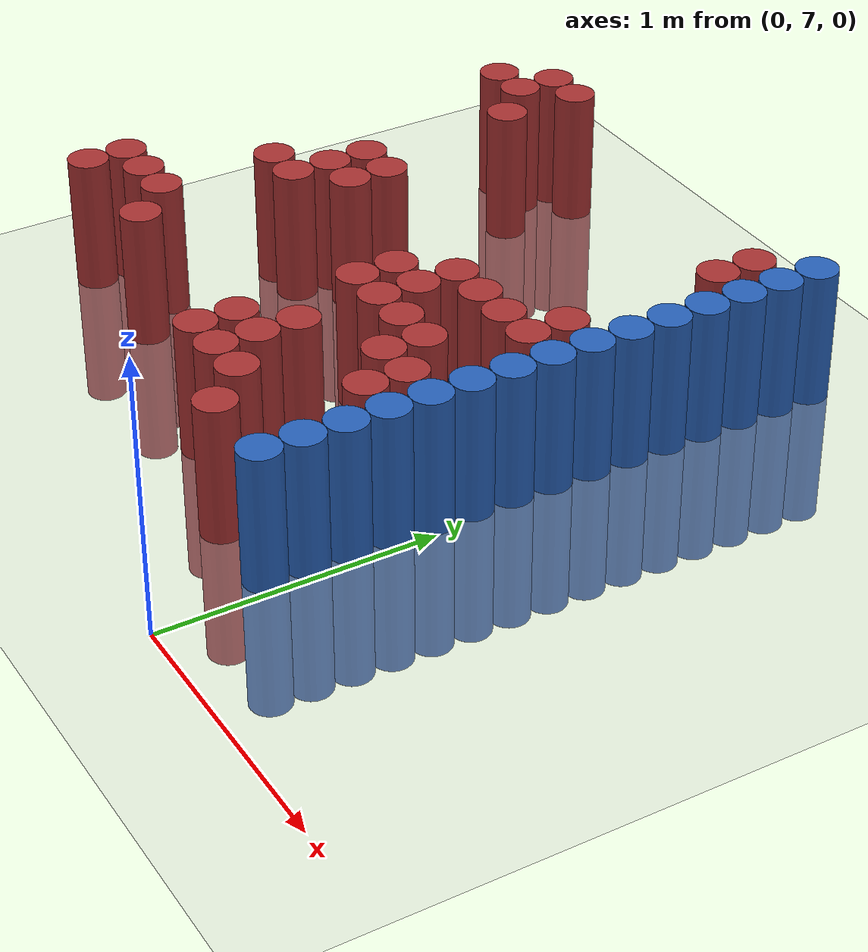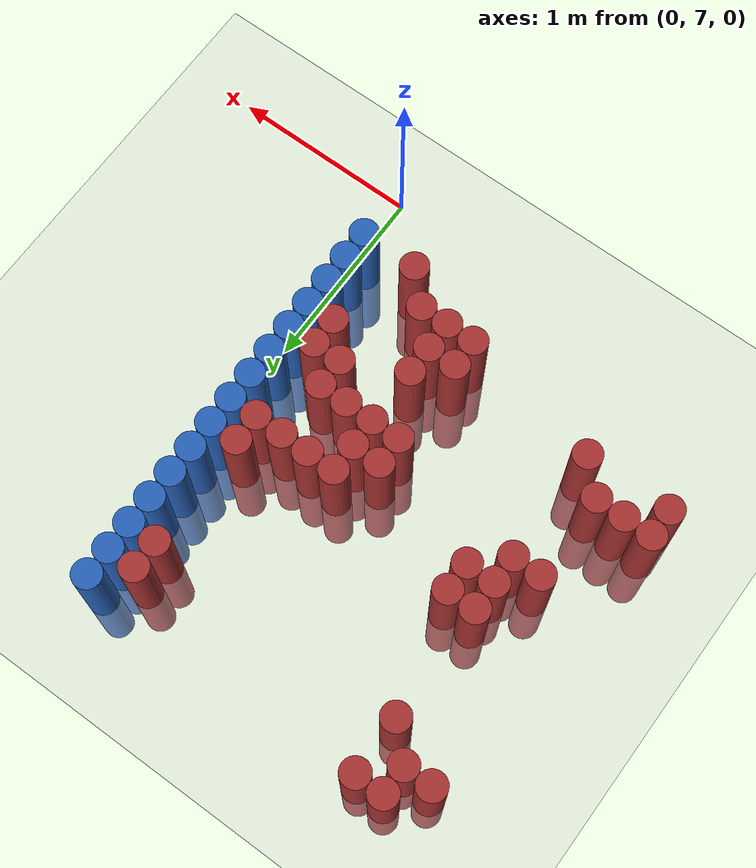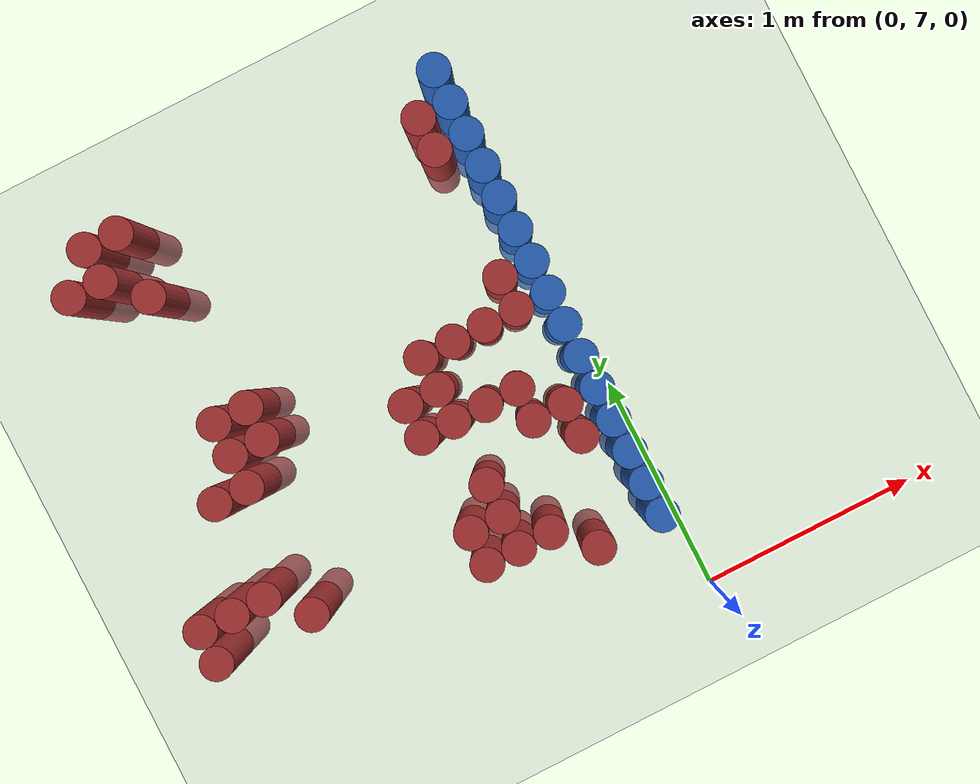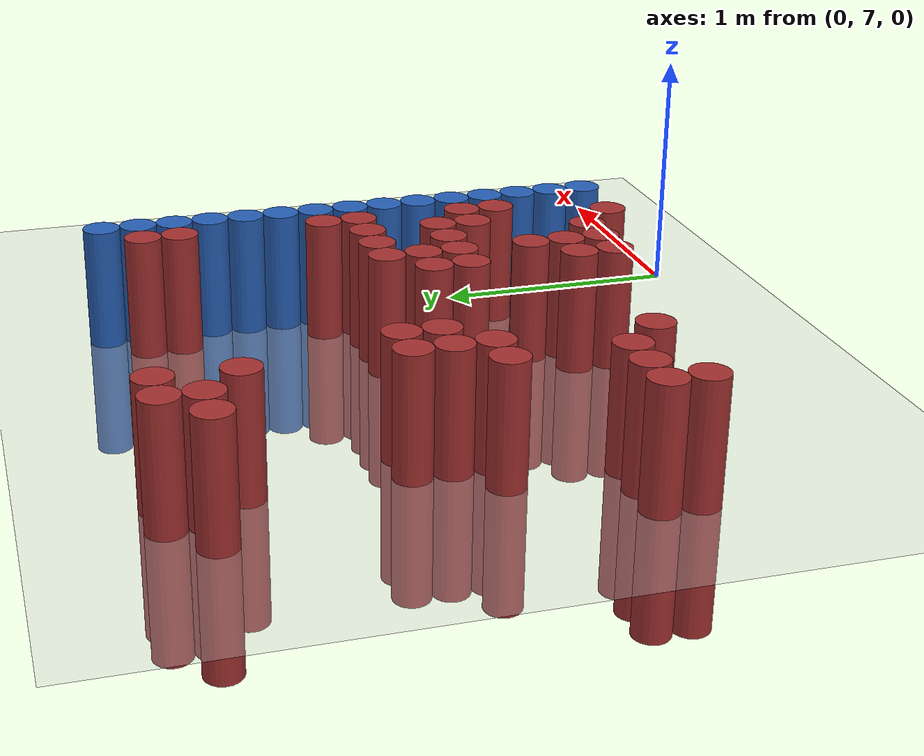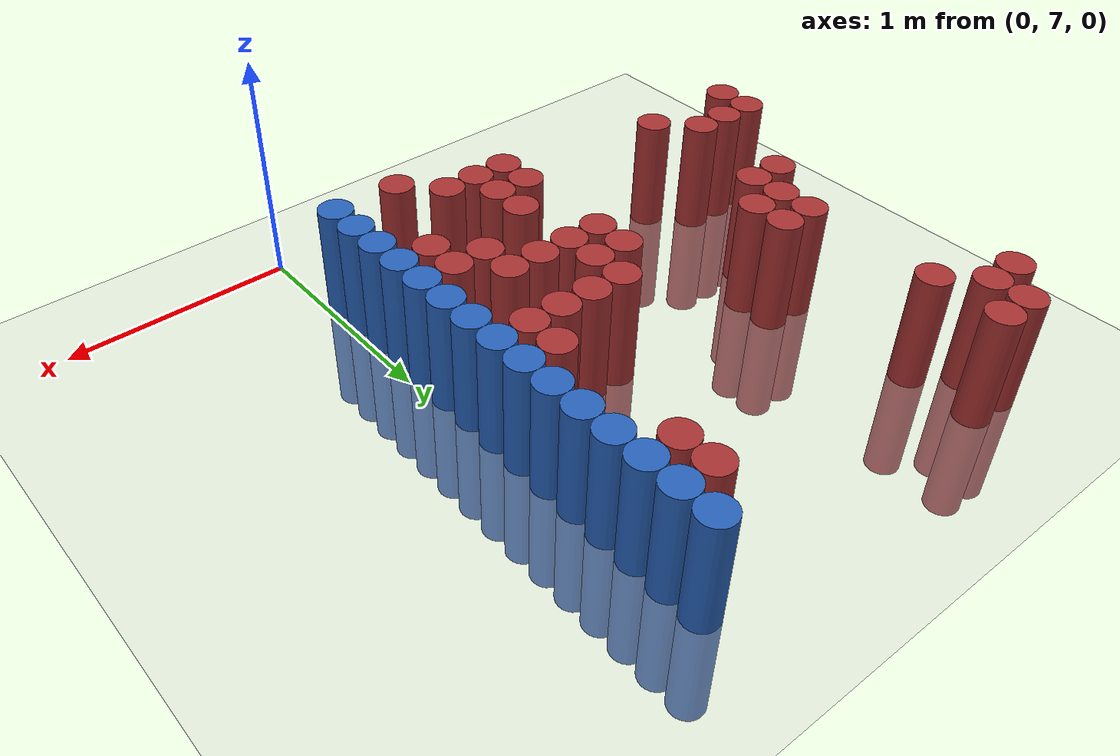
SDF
<sdf version="1.6">
 <world name="default">
  <model name="ground_plane">
   <static>1</static>
   <link name="link">
    <collision name="collision">
     <geometry><plane><normal>0 0 1</normal><size>100 100</size></plane></geometry>
     <surface><friction><ode><mu>100</mu><mu2>50</mu2></ode></friction></surface>
    </collision>
    <visual name="visual">
     <cast_shadows>0</cast_shadows>
     <geometry><plane><normal>0 0 1</normal><size>100 100</size></plane></geometry>
     <material>
      <script><uri>file://media/materials/scripts/gazebo.material</uri><name>Gazebo/Grey</name></script>
     </material>
    </visual>
   </link>
  </model>
  <model name="unit_cylinder_155">
   <static>1</static>
   <pose>-2.025000 7.725000 0.000000 0.000000 0.000000 0.000000</pose>
   <link name="link">
    <inertial>
     <mass>1</mass>
     <inertia><ixx>0.145833</ixx><ixy>0</ixy><ixz>0</ixz><iyy>0.145833</iyy><iyz>0</iyz><izz>0.125</izz></inertia>
    </inertial>
    <collision name="collision">
     <geometry><cylinder><radius>0.075000</radius><length>1</length></cylinder></geometry>
    </collision>
    <visual name="visual">
     <geometry><cylinder><radius>0.075000</radius><length>1</length></cylinder></geometry>
     <material>
      <ambient>0.648000 0.192000 0.192000 1</ambient>
      <diffuse>0.648000 0.192000 0.192000 1</diffuse>
     </material>
     <material>
      <script><name>Gazebo/Grey</name><uri>file://media/materials/scripts/gazebo.material</uri></script>
     </material>
    </visual>
   </link>
  </model>
  <model name="unit_cylinder_156">
   <static>1</static>
   <pose>-2.025000 7.875000 0.000000 0.000000 0.000000 0.000000</pose>
   <link name="link">
    <inertial>
     <mass>1</mass>
     <inertia><ixx>0.145833</ixx><ixy>0</ixy><ixz>0</ixz><iyy>0.145833</iyy><iyz>0</iyz><izz>0.125</izz></inertia>
    </inertial>
    <collision name="collision">
     <geometry><cylinder><radius>0.075000</radius><length>1</length></cylinder></geometry>
    </collision>
    <visual name="visual">
     <geometry><cylinder><radius>0.075000</radius><length>1</length></cylinder></geometry>
     <material>
      <ambient>0.648000 0.192000 0.192000 1</ambient>
      <diffuse>0.648000 0.192000 0.192000 1</diffuse>
     </material>
     <material>
      <script><name>Gazebo/Grey</name><uri>file://media/materials/scripts/gazebo.material</uri></script>
     </material>
    </visual>
   </link>
  </model>
  <model name="unit_cylinder_159">
   <static>1</static>
   <pose>-1.875000 7.875000 0.000000 0.000000 0.000000 0.000000</pose>
   <link name="link">
    <inertial>
     <mass>1</mass>
     <inertia><ixx>0.145833</ixx><ixy>0</ixy><ixz>0</ixz><iyy>0.145833</iyy><iyz>0</iyz><izz>0.125</izz></inertia>
    </inertial>
    <collision name="collision">
     <geometry><cylinder><radius>0.075000</radius><length>1</length></cylinder></geometry>
    </collision>
    <visual name="visual">
     <geometry><cylinder><radius>0.075000</radius><length>1</length></cylinder></geometry>
     <material>
      <ambient>0.648000 0.192000 0.192000 1</ambient>
      <diffuse>0.648000 0.192000 0.192000 1</diffuse>
     </material>
     <material>
      <script><name>Gazebo/Grey</name><uri>file://media/materials/scripts/gazebo.material</uri></script>
     </material>
    </visual>
   </link>
  </model>
  <model name="unit_cylinder_160">
   <static>1</static>
   <pose>-1.875000 9.375000 0.000000 0.000000 0.000000 0.000000</pose>
   <link name="link">
    <inertial>
     <mass>1</mass>
     <inertia><ixx>0.145833</ixx><ixy>0</ixy><ixz>0</ixz><iyy>0.145833</iyy><iyz>0</iyz><izz>0.125</izz></inertia>
    </inertial>
    <collision name="collision">
     <geometry><cylinder><radius>0.075000</radius><length>1</length></cylinder></geometry>
    </collision>
    <visual name="visual">
     <geometry><cylinder><radius>0.075000</radius><length>1</length></cylinder></geometry>
     <material>
      <ambient>0.648000 0.192000 0.192000 1</ambient>
      <diffuse>0.648000 0.192000 0.192000 1</diffuse>
     </material>
     <material>
      <script><name>Gazebo/Grey</name><uri>file://media/materials/scripts/gazebo.material</uri></script>
     </material>
    </visual>
   </link>
  </model>
  <model name="unit_cylinder_161">
   <static>1</static>
   <pose>-1.725000 7.875000 0.000000 0.000000 0.000000 0.000000</pose>
   <link name="link">
    <inertial>
     <mass>1</mass>
     <inertia><ixx>0.145833</ixx><ixy>0</ixy><ixz>0</ixz><iyy>0.145833</iyy><iyz>0</iyz><izz>0.125</izz></inertia>
    </inertial>
    <collision name="collision">
     <geometry><cylinder><radius>0.075000</radius><length>1</length></cylinder></geometry>
    </collision>
    <visual name="visual">
     <geometry><cylinder><radius>0.075000</radius><length>1</length></cylinder></geometry>
     <material>
      <ambient>0.648000 0.192000 0.192000 1</ambient>
      <diffuse>0.648000 0.192000 0.192000 1</diffuse>
     </material>
     <material>
      <script><name>Gazebo/Grey</name><uri>file://media/materials/scripts/gazebo.material</uri></script>
     </material>
    </visual>
   </link>
  </model>
  <model name="unit_cylinder_162">
   <static>1</static>
   <pose>-1.725000 8.325000 0.000000 0.000000 0.000000 0.000000</pose>
   <link name="link">
    <inertial>
     <mass>1</mass>
     <inertia><ixx>0.145833</ixx><ixy>0</ixy><ixz>0</ixz><iyy>0.145833</iyy><iyz>0</iyz><izz>0.125</izz></inertia>
    </inertial>
    <collision name="collision">
     <geometry><cylinder><radius>0.075000</radius><length>1</length></cylinder></geometry>
    </collision>
    <visual name="visual">
     <geometry><cylinder><radius>0.075000</radius><length>1</length></cylinder></geometry>
     <material>
      <ambient>0.648000 0.192000 0.192000 1</ambient>
      <diffuse>0.648000 0.192000 0.192000 1</diffuse>
     </material>
     <material>
      <script><name>Gazebo/Grey</name><uri>file://media/materials/scripts/gazebo.material</uri></script>
     </material>
    </visual>
   </link>
  </model>
  <model name="unit_cylinder_163">
   <static>1</static>
   <pose>-1.725000 9.375000 0.000000 0.000000 0.000000 0.000000</pose>
   <link name="link">
    <inertial>
     <mass>1</mass>
     <inertia><ixx>0.145833</ixx><ixy>0</ixy><ixz>0</ixz><iyy>0.145833</iyy><iyz>0</iyz><izz>0.125</izz></inertia>
    </inertial>
    <collision name="collision">
     <geometry><cylinder><radius>0.075000</radius><length>1</length></cylinder></geometry>
    </collision>
    <visual name="visual">
     <geometry><cylinder><radius>0.075000</radius><length>1</length></cylinder></geometry>
     <material>
      <ambient>0.648000 0.192000 0.192000 1</ambient>
      <diffuse>0.648000 0.192000 0.192000 1</diffuse>
     </material>
     <material>
      <script><name>Gazebo/Grey</name><uri>file://media/materials/scripts/gazebo.material</uri></script>
     </material>
    </visual>
   </link>
  </model>
  <model name="unit_cylinder_164">
   <static>1</static>
   <pose>-1.725000 9.525000 0.000000 0.000000 0.000000 0.000000</pose>
   <link name="link">
    <inertial>
     <mass>1</mass>
     <inertia><ixx>0.145833</ixx><ixy>0</ixy><ixz>0</ixz><iyy>0.145833</iyy><iyz>0</iyz><izz>0.125</izz></inertia>
    </inertial>
    <collision name="collision">
     <geometry><cylinder><radius>0.075000</radius><length>1</length></cylinder></geometry>
    </collision>
    <visual name="visual">
     <geometry><cylinder><radius>0.075000</radius><length>1</length></cylinder></geometry>
     <material>
      <ambient>0.648000 0.192000 0.192000 1</ambient>
      <diffuse>0.648000 0.192000 0.192000 1</diffuse>
     </material>
     <material>
      <script><name>Gazebo/Grey</name><uri>file://media/materials/scripts/gazebo.material</uri></script>
     </material>
    </visual>
   </link>
  </model>
  <model name="unit_cylinder_165">
   <static>1</static>
   <pose>-1.575000 7.725000 0.000000 0.000000 0.000000 0.000000</pose>
   <link name="link">
    <inertial>
     <mass>1</mass>
     <inertia><ixx>0.145833</ixx><ixy>0</ixy><ixz>0</ixz><iyy>0.145833</iyy><iyz>0</iyz><izz>0.125</izz></inertia>
    </inertial>
    <collision name="collision">
     <geometry><cylinder><radius>0.075000</radius><length>1</length></cylinder></geometry>
    </collision>
    <visual name="visual">
     <geometry><cylinder><radius>0.075000</radius><length>1</length></cylinder></geometry>
     <material>
      <ambient>0.648000 0.192000 0.192000 1</ambient>
      <diffuse>0.648000 0.192000 0.192000 1</diffuse>
     </material>
     <material>
      <script><name>Gazebo/Grey</name><uri>file://media/materials/scripts/gazebo.material</uri></script>
     </material>
    </visual>
   </link>
  </model>
  <model name="unit_cylinder_166">
   <static>1</static>
   <pose>-1.575000 8.325000 0.000000 0.000000 0.000000 0.000000</pose>
   <link name="link">
    <inertial>
     <mass>1</mass>
     <inertia><ixx>0.145833</ixx><ixy>0</ixy><ixz>0</ixz><iyy>0.145833</iyy><iyz>0</iyz><izz>0.125</izz></inertia>
    </inertial>
    <collision name="collision">
     <geometry><cylinder><radius>0.075000</radius><length>1</length></cylinder></geometry>
    </collision>
    <visual name="visual">
     <geometry><cylinder><radius>0.075000</radius><length>1</length></cylinder></geometry>
     <material>
      <ambient>0.648000 0.192000 0.192000 1</ambient>
      <diffuse>0.648000 0.192000 0.192000 1</diffuse>
     </material>
     <material>
      <script><name>Gazebo/Grey</name><uri>file://media/materials/scripts/gazebo.material</uri></script>
     </material>
    </visual>
   </link>
  </model>
  <model name="unit_cylinder_167">
   <static>1</static>
   <pose>-1.575000 8.475000 0.000000 0.000000 0.000000 0.000000</pose>
   <link name="link">
    <inertial>
     <mass>1</mass>
     <inertia><ixx>0.145833</ixx><ixy>0</ixy><ixz>0</ixz><iyy>0.145833</iyy><iyz>0</iyz><izz>0.125</izz></inertia>
    </inertial>
    <collision name="collision">
     <geometry><cylinder><radius>0.075000</radius><length>1</length></cylinder></geometry>
    </collision>
    <visual name="visual">
     <geometry><cylinder><radius>0.075000</radius><length>1</length></cylinder></geometry>
     <material>
      <ambient>0.648000 0.192000 0.192000 1</ambient>
      <diffuse>0.648000 0.192000 0.192000 1</diffuse>
     </material>
     <material>
      <script><name>Gazebo/Grey</name><uri>file://media/materials/scripts/gazebo.material</uri></script>
     </material>
    </visual>
   </link>
  </model>
  <model name="unit_cylinder_168">
   <static>1</static>
   <pose>-1.575000 8.625000 0.000000 0.000000 0.000000 0.000000</pose>
   <link name="link">
    <inertial>
     <mass>1</mass>
     <inertia><ixx>0.145833</ixx><ixy>0</ixy><ixz>0</ixz><iyy>0.145833</iyy><iyz>0</iyz><izz>0.125</izz></inertia>
    </inertial>
    <collision name="collision">
     <geometry><cylinder><radius>0.075000</radius><length>1</length></cylinder></geometry>
    </collision>
    <visual name="visual">
     <geometry><cylinder><radius>0.075000</radius><length>1</length></cylinder></geometry>
     <material>
      <ambient>0.648000 0.192000 0.192000 1</ambient>
      <diffuse>0.648000 0.192000 0.192000 1</diffuse>
     </material>
     <material>
      <script><name>Gazebo/Grey</name><uri>file://media/materials/scripts/gazebo.material</uri></script>
     </material>
    </visual>
   </link>
  </model>
  <model name="unit_cylinder_169">
   <static>1</static>
   <pose>-1.575000 9.225000 0.000000 0.000000 0.000000 0.000000</pose>
   <link name="link">
    <inertial>
     <mass>1</mass>
     <inertia><ixx>0.145833</ixx><ixy>0</ixy><ixz>0</ixz><iyy>0.145833</iyy><iyz>0</iyz><izz>0.125</izz></inertia>
    </inertial>
    <collision name="collision">
     <geometry><cylinder><radius>0.075000</radius><length>1</length></cylinder></geometry>
    </collision>
    <visual name="visual">
     <geometry><cylinder><radius>0.075000</radius><length>1</length></cylinder></geometry>
     <material>
      <ambient>0.648000 0.192000 0.192000 1</ambient>
      <diffuse>0.648000 0.192000 0.192000 1</diffuse>
     </material>
     <material>
      <script><name>Gazebo/Grey</name><uri>file://media/materials/scripts/gazebo.material</uri></script>
     </material>
    </visual>
   </link>
  </model>
  <model name="unit_cylinder_170">
   <static>1</static>
   <pose>-1.575000 9.525000 0.000000 0.000000 0.000000 0.000000</pose>
   <link name="link">
    <inertial>
     <mass>1</mass>
     <inertia><ixx>0.145833</ixx><ixy>0</ixy><ixz>0</ixz><iyy>0.145833</iyy><iyz>0</iyz><izz>0.125</izz></inertia>
    </inertial>
    <collision name="collision">
     <geometry><cylinder><radius>0.075000</radius><length>1</length></cylinder></geometry>
    </collision>
    <visual name="visual">
     <geometry><cylinder><radius>0.075000</radius><length>1</length></cylinder></geometry>
     <material>
      <ambient>0.648000 0.192000 0.192000 1</ambient>
      <diffuse>0.648000 0.192000 0.192000 1</diffuse>
     </material>
     <material>
      <script><name>Gazebo/Grey</name><uri>file://media/materials/scripts/gazebo.material</uri></script>
     </material>
    </visual>
   </link>
  </model>
  <model name="unit_cylinder_171">
   <static>1</static>
   <pose>-1.425000 8.475000 0.000000 0.000000 0.000000 0.000000</pose>
   <link name="link">
    <inertial>
     <mass>1</mass>
     <inertia><ixx>0.145833</ixx><ixy>0</ixy><ixz>0</ixz><iyy>0.145833</iyy><iyz>0</iyz><izz>0.125</izz></inertia>
    </inertial>
    <collision name="collision">
     <geometry><cylinder><radius>0.075000</radius><length>1</length></cylinder></geometry>
    </collision>
    <visual name="visual">
     <geometry><cylinder><radius>0.075000</radius><length>1</length></cylinder></geometry>
     <material>
      <ambient>0.648000 0.192000 0.192000 1</ambient>
      <diffuse>0.648000 0.192000 0.192000 1</diffuse>
     </material>
     <material>
      <script><name>Gazebo/Grey</name><uri>file://media/materials/scripts/gazebo.material</uri></script>
     </material>
    </visual>
   </link>
  </model>
  <model name="unit_cylinder_172">
   <static>1</static>
   <pose>-1.425000 8.625000 0.000000 0.000000 0.000000 0.000000</pose>
   <link name="link">
    <inertial>
     <mass>1</mass>
     <inertia><ixx>0.145833</ixx><ixy>0</ixy><ixz>0</ixz><iyy>0.145833</iyy><iyz>0</iyz><izz>0.125</izz></inertia>
    </inertial>
    <collision name="collision">
     <geometry><cylinder><radius>0.075000</radius><length>1</length></cylinder></geometry>
    </collision>
    <visual name="visual">
     <geometry><cylinder><radius>0.075000</radius><length>1</length></cylinder></geometry>
     <material>
      <ambient>0.648000 0.192000 0.192000 1</ambient>
      <diffuse>0.648000 0.192000 0.192000 1</diffuse>
     </material>
     <material>
      <script><name>Gazebo/Grey</name><uri>file://media/materials/scripts/gazebo.material</uri></script>
     </material>
    </visual>
   </link>
  </model>
  <model name="unit_cylinder_193">
   <static>1</static>
   <pose>-0.825000 7.575000 0.000000 0.000000 0.000000 0.000000</pose>
   <link name="link">
    <inertial>
     <mass>1</mass>
     <inertia><ixx>0.145833</ixx><ixy>0</ixy><ixz>0</ixz><iyy>0.145833</iyy><iyz>0</iyz><izz>0.125</izz></inertia>
    </inertial>
    <collision name="collision">
     <geometry><cylinder><radius>0.075000</radius><length>1</length></cylinder></geometry>
    </collision>
    <visual name="visual">
     <geometry><cylinder><radius>0.075000</radius><length>1</length></cylinder></geometry>
     <material>
      <ambient>0.648000 0.192000 0.192000 1</ambient>
      <diffuse>0.648000 0.192000 0.192000 1</diffuse>
     </material>
     <material>
      <script><name>Gazebo/Grey</name><uri>file://media/materials/scripts/gazebo.material</uri></script>
     </material>
    </visual>
   </link>
  </model>
  <model name="unit_cylinder_194">
   <static>1</static>
   <pose>-0.825000 7.725000 0.000000 0.000000 0.000000 0.000000</pose>
   <link name="link">
    <inertial>
     <mass>1</mass>
     <inertia><ixx>0.145833</ixx><ixy>0</ixy><ixz>0</ixz><iyy>0.145833</iyy><iyz>0</iyz><izz>0.125</izz></inertia>
    </inertial>
    <collision name="collision">
     <geometry><cylinder><radius>0.075000</radius><length>1</length></cylinder></geometry>
    </collision>
    <visual name="visual">
     <geometry><cylinder><radius>0.075000</radius><length>1</length></cylinder></geometry>
     <material>
      <ambient>0.648000 0.192000 0.192000 1</ambient>
      <diffuse>0.648000 0.192000 0.192000 1</diffuse>
     </material>
     <material>
      <script><name>Gazebo/Grey</name><uri>file://media/materials/scripts/gazebo.material</uri></script>
     </material>
    </visual>
   </link>
  </model>
  <model name="unit_cylinder_195">
   <static>1</static>
   <pose>-0.825000 8.175000 0.000000 0.000000 0.000000 0.000000</pose>
   <link name="link">
    <inertial>
     <mass>1</mass>
     <inertia><ixx>0.145833</ixx><ixy>0</ixy><ixz>0</ixz><iyy>0.145833</iyy><iyz>0</iyz><izz>0.125</izz></inertia>
    </inertial>
    <collision name="collision">
     <geometry><cylinder><radius>0.075000</radius><length>1</length></cylinder></geometry>
    </collision>
    <visual name="visual">
     <geometry><cylinder><radius>0.075000</radius><length>1</length></cylinder></geometry>
     <material>
      <ambient>0.648000 0.192000 0.192000 1</ambient>
      <diffuse>0.648000 0.192000 0.192000 1</diffuse>
     </material>
     <material>
      <script><name>Gazebo/Grey</name><uri>file://media/materials/scripts/gazebo.material</uri></script>
     </material>
    </visual>
   </link>
  </model>
  <model name="unit_cylinder_196">
   <static>1</static>
   <pose>-0.825000 8.325000 0.000000 0.000000 0.000000 0.000000</pose>
   <link name="link">
    <inertial>
     <mass>1</mass>
     <inertia><ixx>0.145833</ixx><ixy>0</ixy><ixz>0</ixz><iyy>0.145833</iyy><iyz>0</iyz><izz>0.125</izz></inertia>
    </inertial>
    <collision name="collision">
     <geometry><cylinder><radius>0.075000</radius><length>1</length></cylinder></geometry>
    </collision>
    <visual name="visual">
     <geometry><cylinder><radius>0.075000</radius><length>1</length></cylinder></geometry>
     <material>
      <ambient>0.648000 0.192000 0.192000 1</ambient>
      <diffuse>0.648000 0.192000 0.192000 1</diffuse>
     </material>
     <material>
      <script><name>Gazebo/Grey</name><uri>file://media/materials/scripts/gazebo.material</uri></script>
     </material>
    </visual>
   </link>
  </model>
  <model name="unit_cylinder_202">
   <static>1</static>
   <pose>-0.675000 7.575000 0.000000 0.000000 0.000000 0.000000</pose>
   <link name="link">
    <inertial>
     <mass>1</mass>
     <inertia><ixx>0.145833</ixx><ixy>0</ixy><ixz>0</ixz><iyy>0.145833</iyy><iyz>0</iyz><izz>0.125</izz></inertia>
    </inertial>
    <collision name="collision">
     <geometry><cylinder><radius>0.075000</radius><length>1</length></cylinder></geometry>
    </collision>
    <visual name="visual">
     <geometry><cylinder><radius>0.075000</radius><length>1</length></cylinder></geometry>
     <material>
      <ambient>0.648000 0.192000 0.192000 1</ambient>
      <diffuse>0.648000 0.192000 0.192000 1</diffuse>
     </material>
     <material>
      <script><name>Gazebo/Grey</name><uri>file://media/materials/scripts/gazebo.material</uri></script>
     </material>
    </visual>
   </link>
  </model>
  <model name="unit_cylinder_203">
   <static>1</static>
   <pose>-0.675000 7.725000 0.000000 0.000000 0.000000 0.000000</pose>
   <link name="link">
    <inertial>
     <mass>1</mass>
     <inertia><ixx>0.145833</ixx><ixy>0</ixy><ixz>0</ixz><iyy>0.145833</iyy><iyz>0</iyz><izz>0.125</izz></inertia>
    </inertial>
    <collision name="collision">
     <geometry><cylinder><radius>0.075000</radius><length>1</length></cylinder></geometry>
    </collision>
    <visual name="visual">
     <geometry><cylinder><radius>0.075000</radius><length>1</length></cylinder></geometry>
     <material>
      <ambient>0.648000 0.192000 0.192000 1</ambient>
      <diffuse>0.648000 0.192000 0.192000 1</diffuse>
     </material>
     <material>
      <script><name>Gazebo/Grey</name><uri>file://media/materials/scripts/gazebo.material</uri></script>
     </material>
    </visual>
   </link>
  </model>
  <model name="unit_cylinder_204">
   <static>1</static>
   <pose>-0.675000 7.875000 0.000000 0.000000 0.000000 0.000000</pose>
   <link name="link">
    <inertial>
     <mass>1</mass>
     <inertia><ixx>0.145833</ixx><ixy>0</ixy><ixz>0</ixz><iyy>0.145833</iyy><iyz>0</iyz><izz>0.125</izz></inertia>
    </inertial>
    <collision name="collision">
     <geometry><cylinder><radius>0.075000</radius><length>1</length></cylinder></geometry>
    </collision>
    <visual name="visual">
     <geometry><cylinder><radius>0.075000</radius><length>1</length></cylinder></geometry>
     <material>
      <ambient>0.648000 0.192000 0.192000 1</ambient>
      <diffuse>0.648000 0.192000 0.192000 1</diffuse>
     </material>
     <material>
      <script><name>Gazebo/Grey</name><uri>file://media/materials/scripts/gazebo.material</uri></script>
     </material>
    </visual>
   </link>
  </model>
  <model name="unit_cylinder_205">
   <static>1</static>
   <pose>-0.675000 8.175000 0.000000 0.000000 0.000000 0.000000</pose>
   <link name="link">
    <inertial>
     <mass>1</mass>
     <inertia><ixx>0.145833</ixx><ixy>0</ixy><ixz>0</ixz><iyy>0.145833</iyy><iyz>0</iyz><izz>0.125</izz></inertia>
    </inertial>
    <collision name="collision">
     <geometry><cylinder><radius>0.075000</radius><length>1</length></cylinder></geometry>
    </collision>
    <visual name="visual">
     <geometry><cylinder><radius>0.075000</radius><length>1</length></cylinder></geometry>
     <material>
      <ambient>0.648000 0.192000 0.192000 1</ambient>
      <diffuse>0.648000 0.192000 0.192000 1</diffuse>
     </material>
     <material>
      <script><name>Gazebo/Grey</name><uri>file://media/materials/scripts/gazebo.material</uri></script>
     </material>
    </visual>
   </link>
  </model>
  <model name="unit_cylinder_206">
   <static>1</static>
   <pose>-0.675000 8.325000 0.000000 0.000000 0.000000 0.000000</pose>
   <link name="link">
    <inertial>
     <mass>1</mass>
     <inertia><ixx>0.145833</ixx><ixy>0</ixy><ixz>0</ixz><iyy>0.145833</iyy><iyz>0</iyz><izz>0.125</izz></inertia>
    </inertial>
    <collision name="collision">
     <geometry><cylinder><radius>0.075000</radius><length>1</length></cylinder></geometry>
    </collision>
    <visual name="visual">
     <geometry><cylinder><radius>0.075000</radius><length>1</length></cylinder></geometry>
     <material>
      <ambient>0.648000 0.192000 0.192000 1</ambient>
      <diffuse>0.648000 0.192000 0.192000 1</diffuse>
     </material>
     <material>
      <script><name>Gazebo/Grey</name><uri>file://media/materials/scripts/gazebo.material</uri></script>
     </material>
    </visual>
   </link>
  </model>
  <model name="unit_cylinder_207">
   <static>1</static>
   <pose>-0.675000 8.475000 0.000000 0.000000 0.000000 0.000000</pose>
   <link name="link">
    <inertial>
     <mass>1</mass>
     <inertia><ixx>0.145833</ixx><ixy>0</ixy><ixz>0</ixz><iyy>0.145833</iyy><iyz>0</iyz><izz>0.125</izz></inertia>
    </inertial>
    <collision name="collision">
     <geometry><cylinder><radius>0.075000</radius><length>1</length></cylinder></geometry>
    </collision>
    <visual name="visual">
     <geometry><cylinder><radius>0.075000</radius><length>1</length></cylinder></geometry>
     <material>
      <ambient>0.648000 0.192000 0.192000 1</ambient>
      <diffuse>0.648000 0.192000 0.192000 1</diffuse>
     </material>
     <material>
      <script><name>Gazebo/Grey</name><uri>file://media/materials/scripts/gazebo.material</uri></script>
     </material>
    </visual>
   </link>
  </model>
  <model name="unit_cylinder_211">
   <static>1</static>
   <pose>-0.525000 7.575000 0.000000 0.000000 0.000000 0.000000</pose>
   <link name="link">
    <inertial>
     <mass>1</mass>
     <inertia><ixx>0.145833</ixx><ixy>0</ixy><ixz>0</ixz><iyy>0.145833</iyy><iyz>0</iyz><izz>0.125</izz></inertia>
    </inertial>
    <collision name="collision">
     <geometry><cylinder><radius>0.075000</radius><length>1</length></cylinder></geometry>
    </collision>
    <visual name="visual">
     <geometry><cylinder><radius>0.075000</radius><length>1</length></cylinder></geometry>
     <material>
      <ambient>0.648000 0.192000 0.192000 1</ambient>
      <diffuse>0.648000 0.192000 0.192000 1</diffuse>
     </material>
     <material>
      <script><name>Gazebo/Grey</name><uri>file://media/materials/scripts/gazebo.material</uri></script>
     </material>
    </visual>
   </link>
  </model>
  <model name="unit_cylinder_212">
   <static>1</static>
   <pose>-0.525000 8.175000 0.000000 0.000000 0.000000 0.000000</pose>
   <link name="link">
    <inertial>
     <mass>1</mass>
     <inertia><ixx>0.145833</ixx><ixy>0</ixy><ixz>0</ixz><iyy>0.145833</iyy><iyz>0</iyz><izz>0.125</izz></inertia>
    </inertial>
    <collision name="collision">
     <geometry><cylinder><radius>0.075000</radius><length>1</length></cylinder></geometry>
    </collision>
    <visual name="visual">
     <geometry><cylinder><radius>0.075000</radius><length>1</length></cylinder></geometry>
     <material>
      <ambient>0.648000 0.192000 0.192000 1</ambient>
      <diffuse>0.648000 0.192000 0.192000 1</diffuse>
     </material>
     <material>
      <script><name>Gazebo/Grey</name><uri>file://media/materials/scripts/gazebo.material</uri></script>
     </material>
    </visual>
   </link>
  </model>
  <model name="unit_cylinder_213">
   <static>1</static>
   <pose>-0.525000 8.475000 0.000000 0.000000 0.000000 0.000000</pose>
   <link name="link">
    <inertial>
     <mass>1</mass>
     <inertia><ixx>0.145833</ixx><ixy>0</ixy><ixz>0</ixz><iyy>0.145833</iyy><iyz>0</iyz><izz>0.125</izz></inertia>
    </inertial>
    <collision name="collision">
     <geometry><cylinder><radius>0.075000</radius><length>1</length></cylinder></geometry>
    </collision>
    <visual name="visual">
     <geometry><cylinder><radius>0.075000</radius><length>1</length></cylinder></geometry>
     <material>
      <ambient>0.648000 0.192000 0.192000 1</ambient>
      <diffuse>0.648000 0.192000 0.192000 1</diffuse>
     </material>
     <material>
      <script><name>Gazebo/Grey</name><uri>file://media/materials/scripts/gazebo.material</uri></script>
     </material>
    </visual>
   </link>
  </model>
  <model name="unit_cylinder_217">
   <static>1</static>
   <pose>-0.375000 7.425000 0.000000 0.000000 0.000000 0.000000</pose>
   <link name="link">
    <inertial>
     <mass>1</mass>
     <inertia><ixx>0.145833</ixx><ixy>0</ixy><ixz>0</ixz><iyy>0.145833</iyy><iyz>0</iyz><izz>0.125</izz></inertia>
    </inertial>
    <collision name="collision">
     <geometry><cylinder><radius>0.075000</radius><length>1</length></cylinder></geometry>
    </collision>
    <visual name="visual">
     <geometry><cylinder><radius>0.075000</radius><length>1</length></cylinder></geometry>
     <material>
      <ambient>0.648000 0.192000 0.192000 1</ambient>
      <diffuse>0.648000 0.192000 0.192000 1</diffuse>
     </material>
     <material>
      <script><name>Gazebo/Grey</name><uri>file://media/materials/scripts/gazebo.material</uri></script>
     </material>
    </visual>
   </link>
  </model>
  <model name="unit_cylinder_218">
   <static>1</static>
   <pose>-0.375000 8.025000 0.000000 0.000000 0.000000 0.000000</pose>
   <link name="link">
    <inertial>
     <mass>1</mass>
     <inertia><ixx>0.145833</ixx><ixy>0</ixy><ixz>0</ixz><iyy>0.145833</iyy><iyz>0</iyz><izz>0.125</izz></inertia>
    </inertial>
    <collision name="collision">
     <geometry><cylinder><radius>0.075000</radius><length>1</length></cylinder></geometry>
    </collision>
    <visual name="visual">
     <geometry><cylinder><radius>0.075000</radius><length>1</length></cylinder></geometry>
     <material>
      <ambient>0.648000 0.192000 0.192000 1</ambient>
      <diffuse>0.648000 0.192000 0.192000 1</diffuse>
     </material>
     <material>
      <script><name>Gazebo/Grey</name><uri>file://media/materials/scripts/gazebo.material</uri></script>
     </material>
    </visual>
   </link>
  </model>
  <model name="unit_cylinder_219">
   <static>1</static>
   <pose>-0.375000 8.175000 0.000000 0.000000 0.000000 0.000000</pose>
   <link name="link">
    <inertial>
     <mass>1</mass>
     <inertia><ixx>0.145833</ixx><ixy>0</ixy><ixz>0</ixz><iyy>0.145833</iyy><iyz>0</iyz><izz>0.125</izz></inertia>
    </inertial>
    <collision name="collision">
     <geometry><cylinder><radius>0.075000</radius><length>1</length></cylinder></geometry>
    </collision>
    <visual name="visual">
     <geometry><cylinder><radius>0.075000</radius><length>1</length></cylinder></geometry>
     <material>
      <ambient>0.648000 0.192000 0.192000 1</ambient>
      <diffuse>0.648000 0.192000 0.192000 1</diffuse>
     </material>
     <material>
      <script><name>Gazebo/Grey</name><uri>file://media/materials/scripts/gazebo.material</uri></script>
     </material>
    </visual>
   </link>
  </model>
  <model name="unit_cylinder_220">
   <static>1</static>
   <pose>-0.375000 8.475000 0.000000 0.000000 0.000000 0.000000</pose>
   <link name="link">
    <inertial>
     <mass>1</mass>
     <inertia><ixx>0.145833</ixx><ixy>0</ixy><ixz>0</ixz><iyy>0.145833</iyy><iyz>0</iyz><izz>0.125</izz></inertia>
    </inertial>
    <collision name="collision">
     <geometry><cylinder><radius>0.075000</radius><length>1</length></cylinder></geometry>
    </collision>
    <visual name="visual">
     <geometry><cylinder><radius>0.075000</radius><length>1</length></cylinder></geometry>
     <material>
      <ambient>0.648000 0.192000 0.192000 1</ambient>
      <diffuse>0.648000 0.192000 0.192000 1</diffuse>
     </material>
     <material>
      <script><name>Gazebo/Grey</name><uri>file://media/materials/scripts/gazebo.material</uri></script>
     </material>
    </visual>
   </link>
  </model>
  <model name="unit_cylinder_232">
   <static>1</static>
   <pose>-0.225000 7.875000 0.000000 0.000000 0.000000 0.000000</pose>
   <link name="link">
    <inertial>
     <mass>1</mass>
     <inertia><ixx>0.145833</ixx><ixy>0</ixy><ixz>0</ixz><iyy>0.145833</iyy><iyz>0</iyz><izz>0.125</izz></inertia>
    </inertial>
    <collision name="collision">
     <geometry><cylinder><radius>0.075000</radius><length>1</length></cylinder></geometry>
    </collision>
    <visual name="visual">
     <geometry><cylinder><radius>0.075000</radius><length>1</length></cylinder></geometry>
     <material>
      <ambient>0.648000 0.192000 0.192000 1</ambient>
      <diffuse>0.648000 0.192000 0.192000 1</diffuse>
     </material>
     <material>
      <script><name>Gazebo/Grey</name><uri>file://media/materials/scripts/gazebo.material</uri></script>
     </material>
    </visual>
   </link>
  </model>
  <model name="unit_cylinder_233">
   <static>1</static>
   <pose>-0.225000 8.025000 0.000000 0.000000 0.000000 0.000000</pose>
   <link name="link">
    <inertial>
     <mass>1</mass>
     <inertia><ixx>0.145833</ixx><ixy>0</ixy><ixz>0</ixz><iyy>0.145833</iyy><iyz>0</iyz><izz>0.125</izz></inertia>
    </inertial>
    <collision name="collision">
     <geometry><cylinder><radius>0.075000</radius><length>1</length></cylinder></geometry>
    </collision>
    <visual name="visual">
     <geometry><cylinder><radius>0.075000</radius><length>1</length></cylinder></geometry>
     <material>
      <ambient>0.648000 0.192000 0.192000 1</ambient>
      <diffuse>0.648000 0.192000 0.192000 1</diffuse>
     </material>
     <material>
      <script><name>Gazebo/Grey</name><uri>file://media/materials/scripts/gazebo.material</uri></script>
     </material>
    </visual>
   </link>
  </model>
  <model name="unit_cylinder_234">
   <static>1</static>
   <pose>-0.225000 8.475000 0.000000 0.000000 0.000000 0.000000</pose>
   <link name="link">
    <inertial>
     <mass>1</mass>
     <inertia><ixx>0.145833</ixx><ixy>0</ixy><ixz>0</ixz><iyy>0.145833</iyy><iyz>0</iyz><izz>0.125</izz></inertia>
    </inertial>
    <collision name="collision">
     <geometry><cylinder><radius>0.075000</radius><length>1</length></cylinder></geometry>
    </collision>
    <visual name="visual">
     <geometry><cylinder><radius>0.075000</radius><length>1</length></cylinder></geometry>
     <material>
      <ambient>0.648000 0.192000 0.192000 1</ambient>
      <diffuse>0.648000 0.192000 0.192000 1</diffuse>
     </material>
     <material>
      <script><name>Gazebo/Grey</name><uri>file://media/materials/scripts/gazebo.material</uri></script>
     </material>
    </visual>
   </link>
  </model>
  <model name="unit_cylinder_235">
   <static>1</static>
   <pose>-0.225000 8.625000 0.000000 0.000000 0.000000 0.000000</pose>
   <link name="link">
    <inertial>
     <mass>1</mass>
     <inertia><ixx>0.145833</ixx><ixy>0</ixy><ixz>0</ixz><iyy>0.145833</iyy><iyz>0</iyz><izz>0.125</izz></inertia>
    </inertial>
    <collision name="collision">
     <geometry><cylinder><radius>0.075000</radius><length>1</length></cylinder></geometry>
    </collision>
    <visual name="visual">
     <geometry><cylinder><radius>0.075000</radius><length>1</length></cylinder></geometry>
     <material>
      <ambient>0.648000 0.192000 0.192000 1</ambient>
      <diffuse>0.648000 0.192000 0.192000 1</diffuse>
     </material>
     <material>
      <script><name>Gazebo/Grey</name><uri>file://media/materials/scripts/gazebo.material</uri></script>
     </material>
    </visual>
   </link>
  </model>
  <model name="unit_cylinder_236">
   <static>1</static>
   <pose>-0.225000 9.225000 0.000000 0.000000 0.000000 0.000000</pose>
   <link name="link">
    <inertial>
     <mass>1</mass>
     <inertia><ixx>0.145833</ixx><ixy>0</ixy><ixz>0</ixz><iyy>0.145833</iyy><iyz>0</iyz><izz>0.125</izz></inertia>
    </inertial>
    <collision name="collision">
     <geometry><cylinder><radius>0.075000</radius><length>1</length></cylinder></geometry>
    </collision>
    <visual name="visual">
     <geometry><cylinder><radius>0.075000</radius><length>1</length></cylinder></geometry>
     <material>
      <ambient>0.648000 0.192000 0.192000 1</ambient>
      <diffuse>0.648000 0.192000 0.192000 1</diffuse>
     </material>
     <material>
      <script><name>Gazebo/Grey</name><uri>file://media/materials/scripts/gazebo.material</uri></script>
     </material>
    </visual>
   </link>
  </model>
  <model name="unit_cylinder_237">
   <static>1</static>
   <pose>-0.225000 9.375000 0.000000 0.000000 0.000000 0.000000</pose>
   <link name="link">
    <inertial>
     <mass>1</mass>
     <inertia><ixx>0.145833</ixx><ixy>0</ixy><ixz>0</ixz><iyy>0.145833</iyy><iyz>0</iyz><izz>0.125</izz></inertia>
    </inertial>
    <collision name="collision">
     <geometry><cylinder><radius>0.075000</radius><length>1</length></cylinder></geometry>
    </collision>
    <visual name="visual">
     <geometry><cylinder><radius>0.075000</radius><length>1</length></cylinder></geometry>
     <material>
      <ambient>0.648000 0.192000 0.192000 1</ambient>
      <diffuse>0.648000 0.192000 0.192000 1</diffuse>
     </material>
     <material>
      <script><name>Gazebo/Grey</name><uri>file://media/materials/scripts/gazebo.material</uri></script>
     </material>
    </visual>
   </link>
  </model>
  <model name="unit_cylinder_253">
   <static>1</static>
   <pose>-0.075000 7.425000 0.000000 0.000000 0.000000 0.000000</pose>
   <link name="link">
    <inertial>
     <mass>1</mass>
     <inertia><ixx>0.145833</ixx><ixy>0</ixy><ixz>0</ixz><iyy>0.145833</iyy><iyz>0</iyz><izz>0.125</izz></inertia>
    </inertial>
    <collision name="collision">
     <geometry><cylinder><radius>0.075000</radius><length>1</length></cylinder></geometry>
    </collision>
    <visual name="visual">
     <geometry><cylinder><radius>0.075000</radius><length>1</length></cylinder></geometry>
     <material>
      <ambient>0.152000 0.379000 0.720000 1</ambient>
      <diffuse>0.152000 0.379000 0.720000 1</diffuse>
     </material>
     <material>
      <script><name>Gazebo/Grey</name><uri>file://media/materials/scripts/gazebo.material</uri></script>
     </material>
    </visual>
   </link>
  </model>
  <model name="unit_cylinder_254">
   <static>1</static>
   <pose>-0.075000 7.575000 0.000000 0.000000 0.000000 0.000000</pose>
   <link name="link">
    <inertial>
     <mass>1</mass>
     <inertia><ixx>0.145833</ixx><ixy>0</ixy><ixz>0</ixz><iyy>0.145833</iyy><iyz>0</iyz><izz>0.125</izz></inertia>
    </inertial>
    <collision name="collision">
     <geometry><cylinder><radius>0.075000</radius><length>1</length></cylinder></geometry>
    </collision>
    <visual name="visual">
     <geometry><cylinder><radius>0.075000</radius><length>1</length></cylinder></geometry>
     <material>
      <ambient>0.152000 0.379000 0.720000 1</ambient>
      <diffuse>0.152000 0.379000 0.720000 1</diffuse>
     </material>
     <material>
      <script><name>Gazebo/Grey</name><uri>file://media/materials/scripts/gazebo.material</uri></script>
     </material>
    </visual>
   </link>
  </model>
  <model name="unit_cylinder_255">
   <static>1</static>
   <pose>-0.075000 7.725000 0.000000 0.000000 0.000000 0.000000</pose>
   <link name="link">
    <inertial>
     <mass>1</mass>
     <inertia><ixx>0.145833</ixx><ixy>0</ixy><ixz>0</ixz><iyy>0.145833</iyy><iyz>0</iyz><izz>0.125</izz></inertia>
    </inertial>
    <collision name="collision">
     <geometry><cylinder><radius>0.075000</radius><length>1</length></cylinder></geometry>
    </collision>
    <visual name="visual">
     <geometry><cylinder><radius>0.075000</radius><length>1</length></cylinder></geometry>
     <material>
      <ambient>0.152000 0.379000 0.720000 1</ambient>
      <diffuse>0.152000 0.379000 0.720000 1</diffuse>
     </material>
     <material>
      <script><name>Gazebo/Grey</name><uri>file://media/materials/scripts/gazebo.material</uri></script>
     </material>
    </visual>
   </link>
  </model>
  <model name="unit_cylinder_256">
   <static>1</static>
   <pose>-0.075000 7.875000 0.000000 0.000000 0.000000 0.000000</pose>
   <link name="link">
    <inertial>
     <mass>1</mass>
     <inertia><ixx>0.145833</ixx><ixy>0</ixy><ixz>0</ixz><iyy>0.145833</iyy><iyz>0</iyz><izz>0.125</izz></inertia>
    </inertial>
    <collision name="collision">
     <geometry><cylinder><radius>0.075000</radius><length>1</length></cylinder></geometry>
    </collision>
    <visual name="visual">
     <geometry><cylinder><radius>0.075000</radius><length>1</length></cylinder></geometry>
     <material>
      <ambient>0.152000 0.379000 0.720000 1</ambient>
      <diffuse>0.152000 0.379000 0.720000 1</diffuse>
     </material>
     <material>
      <script><name>Gazebo/Grey</name><uri>file://media/materials/scripts/gazebo.material</uri></script>
     </material>
    </visual>
   </link>
  </model>
  <model name="unit_cylinder_257">
   <static>1</static>
   <pose>-0.075000 8.025000 0.000000 0.000000 0.000000 0.000000</pose>
   <link name="link">
    <inertial>
     <mass>1</mass>
     <inertia><ixx>0.145833</ixx><ixy>0</ixy><ixz>0</ixz><iyy>0.145833</iyy><iyz>0</iyz><izz>0.125</izz></inertia>
    </inertial>
    <collision name="collision">
     <geometry><cylinder><radius>0.075000</radius><length>1</length></cylinder></geometry>
    </collision>
    <visual name="visual">
     <geometry><cylinder><radius>0.075000</radius><length>1</length></cylinder></geometry>
     <material>
      <ambient>0.152000 0.379000 0.720000 1</ambient>
      <diffuse>0.152000 0.379000 0.720000 1</diffuse>
     </material>
     <material>
      <script><name>Gazebo/Grey</name><uri>file://media/materials/scripts/gazebo.material</uri></script>
     </material>
    </visual>
   </link>
  </model>
  <model name="unit_cylinder_258">
   <static>1</static>
   <pose>-0.075000 8.175000 0.000000 0.000000 0.000000 0.000000</pose>
   <link name="link">
    <inertial>
     <mass>1</mass>
     <inertia><ixx>0.145833</ixx><ixy>0</ixy><ixz>0</ixz><iyy>0.145833</iyy><iyz>0</iyz><izz>0.125</izz></inertia>
    </inertial>
    <collision name="collision">
     <geometry><cylinder><radius>0.075000</radius><length>1</length></cylinder></geometry>
    </collision>
    <visual name="visual">
     <geometry><cylinder><radius>0.075000</radius><length>1</length></cylinder></geometry>
     <material>
      <ambient>0.152000 0.379000 0.720000 1</ambient>
      <diffuse>0.152000 0.379000 0.720000 1</diffuse>
     </material>
     <material>
      <script><name>Gazebo/Grey</name><uri>file://media/materials/scripts/gazebo.material</uri></script>
     </material>
    </visual>
   </link>
  </model>
  <model name="unit_cylinder_259">
   <static>1</static>
   <pose>-0.075000 8.325000 0.000000 0.000000 0.000000 0.000000</pose>
   <link name="link">
    <inertial>
     <mass>1</mass>
     <inertia><ixx>0.145833</ixx><ixy>0</ixy><ixz>0</ixz><iyy>0.145833</iyy><iyz>0</iyz><izz>0.125</izz></inertia>
    </inertial>
    <collision name="collision">
     <geometry><cylinder><radius>0.075000</radius><length>1</length></cylinder></geometry>
    </collision>
    <visual name="visual">
     <geometry><cylinder><radius>0.075000</radius><length>1</length></cylinder></geometry>
     <material>
      <ambient>0.152000 0.379000 0.720000 1</ambient>
      <diffuse>0.152000 0.379000 0.720000 1</diffuse>
     </material>
     <material>
      <script><name>Gazebo/Grey</name><uri>file://media/materials/scripts/gazebo.material</uri></script>
     </material>
    </visual>
   </link>
  </model>
  <model name="unit_cylinder_260">
   <static>1</static>
   <pose>-0.075000 8.475000 0.000000 0.000000 0.000000 0.000000</pose>
   <link name="link">
    <inertial>
     <mass>1</mass>
     <inertia><ixx>0.145833</ixx><ixy>0</ixy><ixz>0</ixz><iyy>0.145833</iyy><iyz>0</iyz><izz>0.125</izz></inertia>
    </inertial>
    <collision name="collision">
     <geometry><cylinder><radius>0.075000</radius><length>1</length></cylinder></geometry>
    </collision>
    <visual name="visual">
     <geometry><cylinder><radius>0.075000</radius><length>1</length></cylinder></geometry>
     <material>
      <ambient>0.152000 0.379000 0.720000 1</ambient>
      <diffuse>0.152000 0.379000 0.720000 1</diffuse>
     </material>
     <material>
      <script><name>Gazebo/Grey</name><uri>file://media/materials/scripts/gazebo.material</uri></script>
     </material>
    </visual>
   </link>
  </model>
  <model name="unit_cylinder_261">
   <static>1</static>
   <pose>-0.075000 8.625000 0.000000 0.000000 0.000000 0.000000</pose>
   <link name="link">
    <inertial>
     <mass>1</mass>
     <inertia><ixx>0.145833</ixx><ixy>0</ixy><ixz>0</ixz><iyy>0.145833</iyy><iyz>0</iyz><izz>0.125</izz></inertia>
    </inertial>
    <collision name="collision">
     <geometry><cylinder><radius>0.075000</radius><length>1</length></cylinder></geometry>
    </collision>
    <visual name="visual">
     <geometry><cylinder><radius>0.075000</radius><length>1</length></cylinder></geometry>
     <material>
      <ambient>0.152000 0.379000 0.720000 1</ambient>
      <diffuse>0.152000 0.379000 0.720000 1</diffuse>
     </material>
     <material>
      <script><name>Gazebo/Grey</name><uri>file://media/materials/scripts/gazebo.material</uri></script>
     </material>
    </visual>
   </link>
  </model>
  <model name="unit_cylinder_262">
   <static>1</static>
   <pose>-0.075000 8.775000 0.000000 0.000000 0.000000 0.000000</pose>
   <link name="link">
    <inertial>
     <mass>1</mass>
     <inertia><ixx>0.145833</ixx><ixy>0</ixy><ixz>0</ixz><iyy>0.145833</iyy><iyz>0</iyz><izz>0.125</izz></inertia>
    </inertial>
    <collision name="collision">
     <geometry><cylinder><radius>0.075000</radius><length>1</length></cylinder></geometry>
    </collision>
    <visual name="visual">
     <geometry><cylinder><radius>0.075000</radius><length>1</length></cylinder></geometry>
     <material>
      <ambient>0.152000 0.379000 0.720000 1</ambient>
      <diffuse>0.152000 0.379000 0.720000 1</diffuse>
     </material>
     <material>
      <script><name>Gazebo/Grey</name><uri>file://media/materials/scripts/gazebo.material</uri></script>
     </material>
    </visual>
   </link>
  </model>
  <model name="unit_cylinder_263">
   <static>1</static>
   <pose>-0.075000 8.925000 0.000000 0.000000 0.000000 0.000000</pose>
   <link name="link">
    <inertial>
     <mass>1</mass>
     <inertia><ixx>0.145833</ixx><ixy>0</ixy><ixz>0</ixz><iyy>0.145833</iyy><iyz>0</iyz><izz>0.125</izz></inertia>
    </inertial>
    <collision name="collision">
     <geometry><cylinder><radius>0.075000</radius><length>1</length></cylinder></geometry>
    </collision>
    <visual name="visual">
     <geometry><cylinder><radius>0.075000</radius><length>1</length></cylinder></geometry>
     <material>
      <ambient>0.152000 0.379000 0.720000 1</ambient>
      <diffuse>0.152000 0.379000 0.720000 1</diffuse>
     </material>
     <material>
      <script><name>Gazebo/Grey</name><uri>file://media/materials/scripts/gazebo.material</uri></script>
     </material>
    </visual>
   </link>
  </model>
  <model name="unit_cylinder_264">
   <static>1</static>
   <pose>-0.075000 9.075000 0.000000 0.000000 0.000000 0.000000</pose>
   <link name="link">
    <inertial>
     <mass>1</mass>
     <inertia><ixx>0.145833</ixx><ixy>0</ixy><ixz>0</ixz><iyy>0.145833</iyy><iyz>0</iyz><izz>0.125</izz></inertia>
    </inertial>
    <collision name="collision">
     <geometry><cylinder><radius>0.075000</radius><length>1</length></cylinder></geometry>
    </collision>
    <visual name="visual">
     <geometry><cylinder><radius>0.075000</radius><length>1</length></cylinder></geometry>
     <material>
      <ambient>0.152000 0.379000 0.720000 1</ambient>
      <diffuse>0.152000 0.379000 0.720000 1</diffuse>
     </material>
     <material>
      <script><name>Gazebo/Grey</name><uri>file://media/materials/scripts/gazebo.material</uri></script>
     </material>
    </visual>
   </link>
  </model>
  <model name="unit_cylinder_265">
   <static>1</static>
   <pose>-0.075000 9.225000 0.000000 0.000000 0.000000 0.000000</pose>
   <link name="link">
    <inertial>
     <mass>1</mass>
     <inertia><ixx>0.145833</ixx><ixy>0</ixy><ixz>0</ixz><iyy>0.145833</iyy><iyz>0</iyz><izz>0.125</izz></inertia>
    </inertial>
    <collision name="collision">
     <geometry><cylinder><radius>0.075000</radius><length>1</length></cylinder></geometry>
    </collision>
    <visual name="visual">
     <geometry><cylinder><radius>0.075000</radius><length>1</length></cylinder></geometry>
     <material>
      <ambient>0.152000 0.379000 0.720000 1</ambient>
      <diffuse>0.152000 0.379000 0.720000 1</diffuse>
     </material>
     <material>
      <script><name>Gazebo/Grey</name><uri>file://media/materials/scripts/gazebo.material</uri></script>
     </material>
    </visual>
   </link>
  </model>
  <model name="unit_cylinder_266">
   <static>1</static>
   <pose>-0.075000 9.375000 0.000000 0.000000 0.000000 0.000000</pose>
   <link name="link">
    <inertial>
     <mass>1</mass>
     <inertia><ixx>0.145833</ixx><ixy>0</ixy><ixz>0</ixz><iyy>0.145833</iyy><iyz>0</iyz><izz>0.125</izz></inertia>
    </inertial>
    <collision name="collision">
     <geometry><cylinder><radius>0.075000</radius><length>1</length></cylinder></geometry>
    </collision>
    <visual name="visual">
     <geometry><cylinder><radius>0.075000</radius><length>1</length></cylinder></geometry>
     <material>
      <ambient>0.152000 0.379000 0.720000 1</ambient>
      <diffuse>0.152000 0.379000 0.720000 1</diffuse>
     </material>
     <material>
      <script><name>Gazebo/Grey</name><uri>file://media/materials/scripts/gazebo.material</uri></script>
     </material>
    </visual>
   </link>
  </model>
  <model name="unit_cylinder_267">
   <static>1</static>
   <pose>-0.075000 9.525000 0.000000 0.000000 0.000000 0.000000</pose>
   <link name="link">
    <inertial>
     <mass>1</mass>
     <inertia><ixx>0.145833</ixx><ixy>0</ixy><ixz>0</ixz><iyy>0.145833</iyy><iyz>0</iyz><izz>0.125</izz></inertia>
    </inertial>
    <collision name="collision">
     <geometry><cylinder><radius>0.075000</radius><length>1</length></cylinder></geometry>
    </collision>
    <visual name="visual">
     <geometry><cylinder><radius>0.075000</radius><length>1</length></cylinder></geometry>
     <material>
      <ambient>0.152000 0.379000 0.720000 1</ambient>
      <diffuse>0.152000 0.379000 0.720000 1</diffuse>
     </material>
     <material>
      <script><name>Gazebo/Grey</name><uri>file://media/materials/scripts/gazebo.material</uri></script>
     </material>
    </visual>
   </link>
  </model>
 </world>
</sdf>
